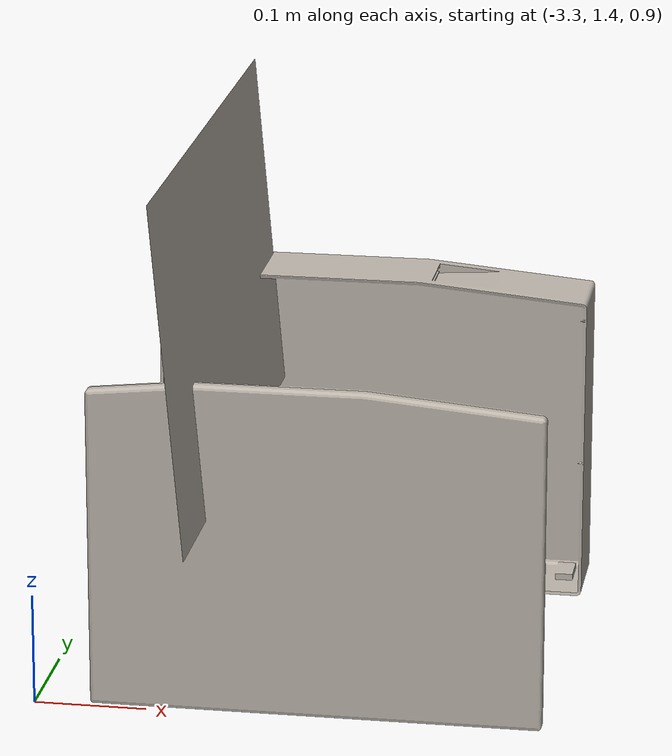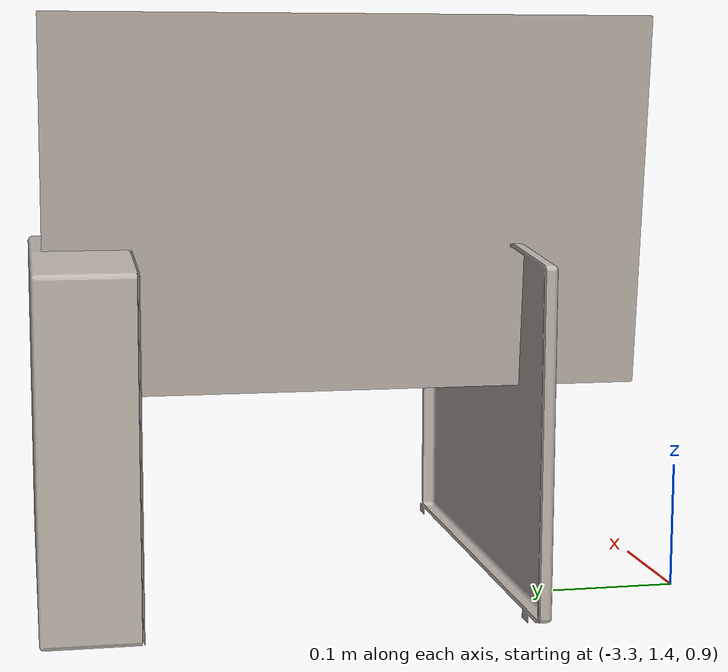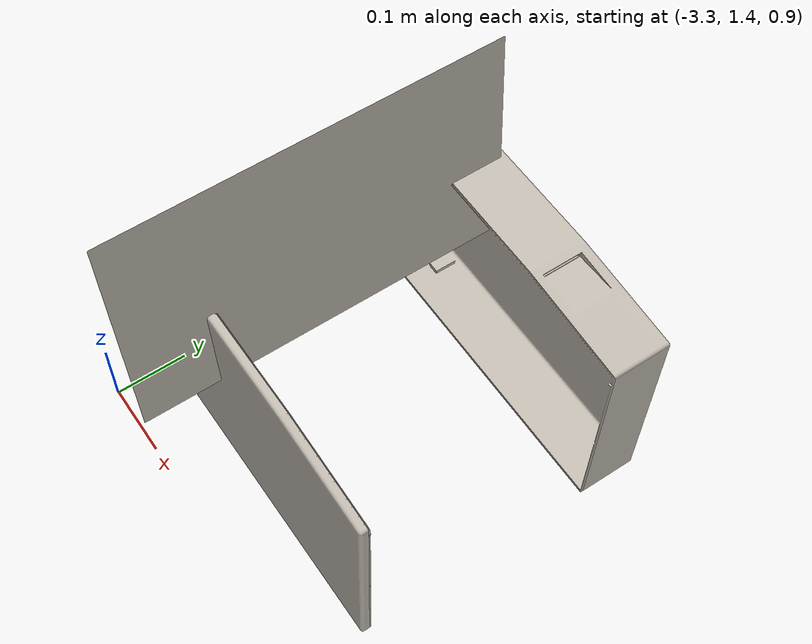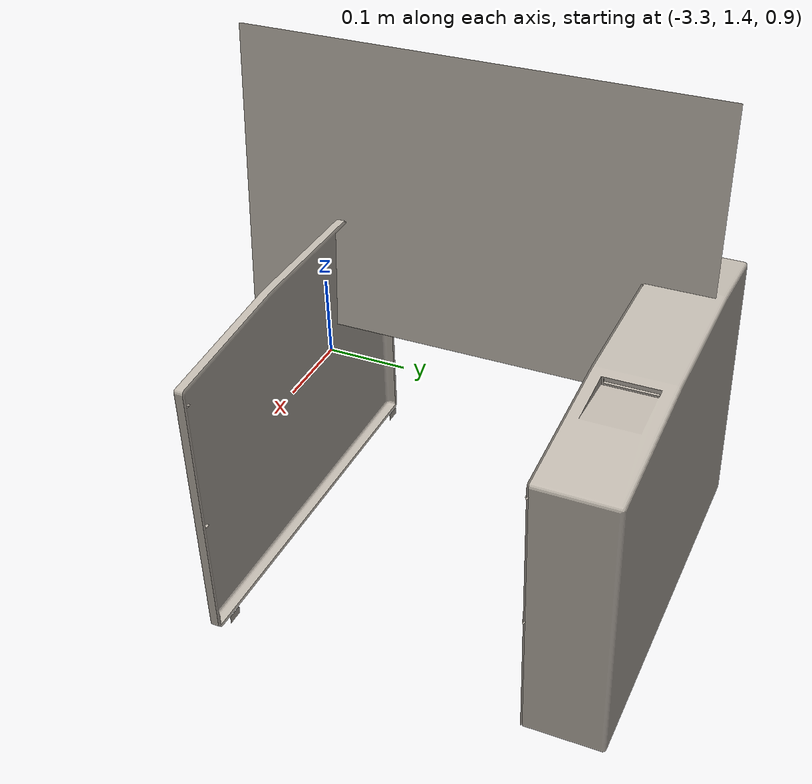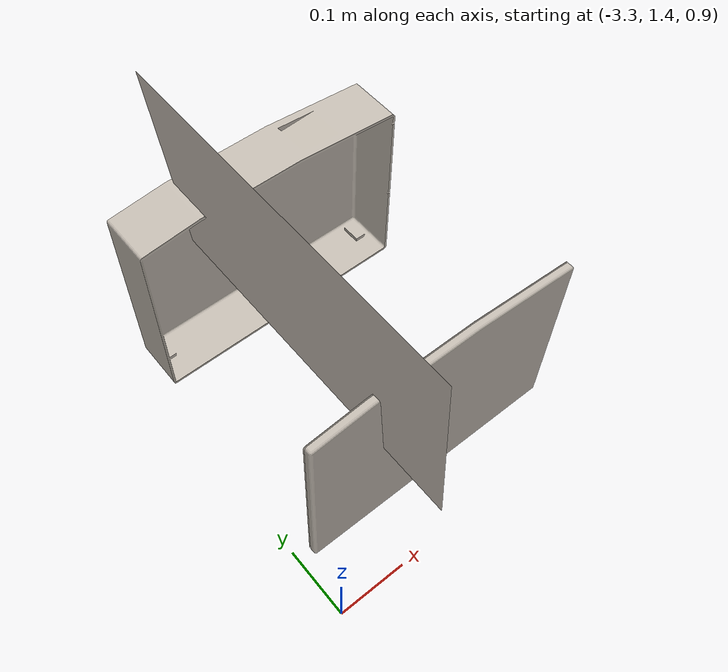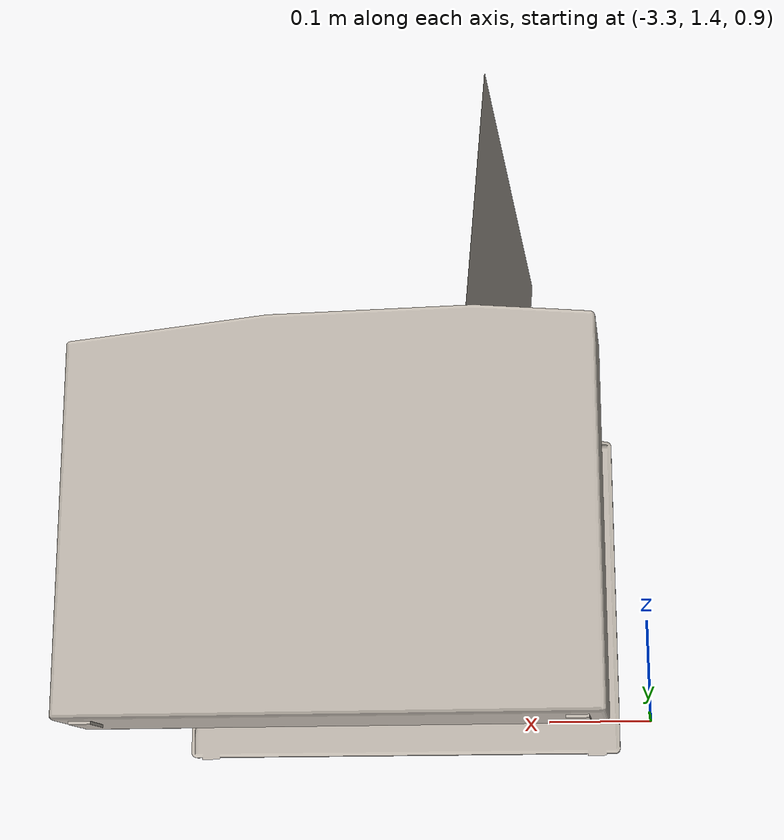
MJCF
<mujoco model="imac_24">
  <compiler angle="radian" balanceinertia="true"/>

  <asset>
    <mesh name="object_mesh_009" file="meshes/part_001_unicolor_creme_t.obj" scale="0.999999881 0.999999881 0.999999881" />
    <mesh name="object_mesh_008" file="meshes/part_000_unicolor_creme.obj" scale="0.999999881 0.999999881 0.999999881" />
    <material name="object_001_part_001_material" rgba="1 1 1 1" specular="0.1675" shininess="0" reflectance="0" texture="object_001_part_001_texture" />
    <material name="object_001_part_000_material" rgba="1 1 1 1" specular="0.1675" shininess="0" reflectance="0" texture="object_001_part_000_texture" />
    <texture name="object_001_part_001_texture" type="2d" file="textures/image_000.png" />
    <texture name="object_001_part_000_texture" type="2d" file="textures/image_001.png" />
  </asset>

  <worldbody>
    <body name="object_002_367fe59968558d7ca74557aacdc5add33d8c43d5" pos="-3.06618381 1.70035919 0.860000064" quat="0.707106802 0 -4.21468498e-08 0.70710676">
      <inertial pos="0 0 0" mass="0.001" diaginertia="0.001 0.001 0.001" />
      <geom name="object_visual_002_000" type="mesh" mesh="object_mesh_008" material="object_001_part_000_material" contype="0" conaffinity="0" group="2" shellinertia="true" mass="0" />
      <geom name="object_visual_002_001" type="mesh" mesh="object_mesh_009" material="object_001_part_001_material" contype="0" conaffinity="0" group="2" shellinertia="true" mass="0" />
    </body>

  </worldbody>
</mujoco>
